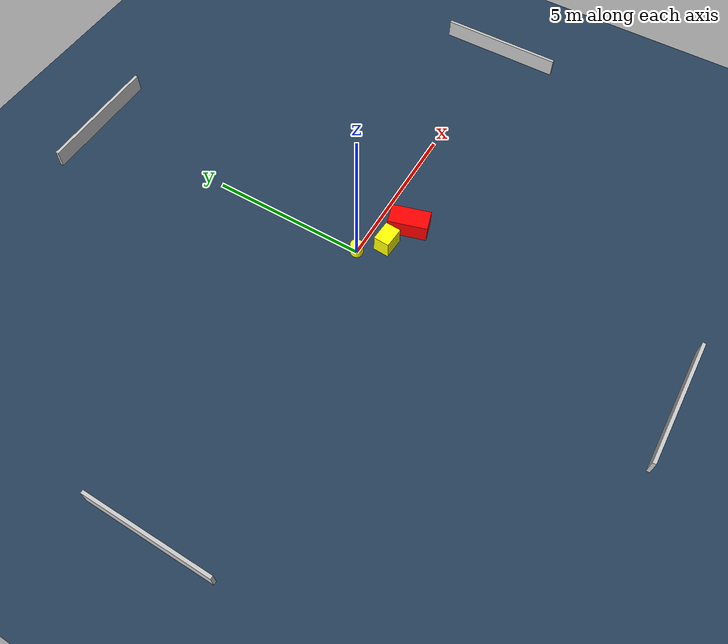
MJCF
<?xml version="1.0" ?>
<mujoco model="generated_environment">
  <option timestep="0.01" integrator="RK4" cone="elliptic"/>
  <default>
    <geom density="1"/>
  </default>
  <asset>
    <texture builtin="gradient" height="3072" name="skybox" rgb1="0.3 0.5 0.7" rgb2="0 0 0" type="skybox" width="512"/>
    <texture builtin="checker" height="300" name="groundplane" rgb1="0.2 0.3 0.4" rgb2="0.1 0.2 0.3" type="2d" width="300"/>
    <material name="groundplane" reflectance="0.2" texrepeat="5 5" texture="groundplane"/>
  </asset>
  <worldbody>
    <light dir="0 0 -1" directional="true" pos="0 0 1.5"/>
    <geom condim="3" friction="0.5 0.005 0.001" material="groundplane" name="floor" pos="0 0 0" size="0 0 0.05" type="plane"/>
    <body name="walls">
      <geom name="wall_1" condim="4" pos="-10.0 0.0 0.3" rgba="0.800000011920929 0.800000011920929 0.800000011920929 1.0" size="0.05 2.0 0.3" type="box"/>
      <geom name="wall_2" condim="4" pos="10.0 0.0 0.3" rgba="0.800000011920929 0.800000011920929 0.800000011920929 1.0" size="0.05 2.0 0.3" type="box"/>
      <geom name="wall_3" condim="4" pos="0.0 -10.0 0.3" rgba="0.800000011920929 0.800000011920929 0.800000011920929 1.0" size="2.0 0.05 0.3" type="box"/>
      <geom name="wall_4" condim="4" pos="0.0 10.0 0.3" rgba="0.800000011920929 0.800000011920929 0.800000011920929 1.0" size="2.0 0.05 0.3" type="box"/>
    </body>
    <body name="robot">
      <joint name="joint_x" type="slide" pos="0 0 0" axis="1 0 0"/>
      <joint name="joint_y" type="slide" pos="0 0 0" axis="0 1 0"/>
      <geom name="robot" type="cylinder" pos="0.0 0.0 0.2" size="0.2 0.2 0.0" mass="5.0" friction="1.0 0.005 0.0001" condim="4" rgba="1.0 1.0 0.0 1.0"/>
    </body>
    <body name="obstacle_1_movable">
      <geom name="obstacle_1_movable" condim="4" pos="0.6893489941635851 -0.6606301036753154 0.3" euler="0 0 266.61248283750433" friction="0.0 0.005 0.001" rgba="1.0 1.0 0.0 1.0" size="0.25115049892014907 0.3373506432376562 0.3" type="box" mass="0.1"/>
      <joint type="free"/>
    </body>
    <body name="obstacle_2_static">
      <geom name="obstacle_2_static" condim="4" pos="1.5922274301922121 -0.9253223170438288 0.3" euler="0 0 196.59362659879196" friction="0.0 0.005 0.001" rgba="1.0 0.0 0.0 1.0" size="0.32855348977217497 0.6174212759679943 0.3" type="box"/>
    </body>
  </worldbody>
  <actuator>
    <motor name="actuator_x" joint="joint_x" gear="1" ctrlrange="-1 1"/>
    <motor name="actuator_y" joint="joint_y" gear="1" ctrlrange="-1 1"/>
  </actuator>
</mujoco>
